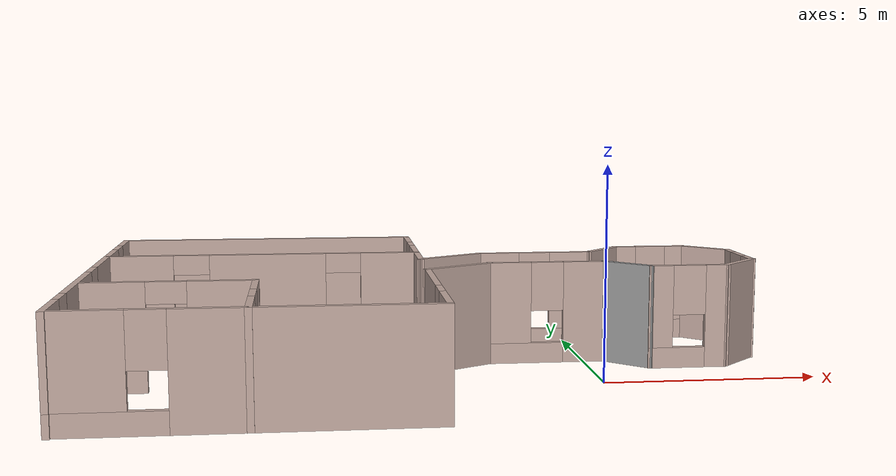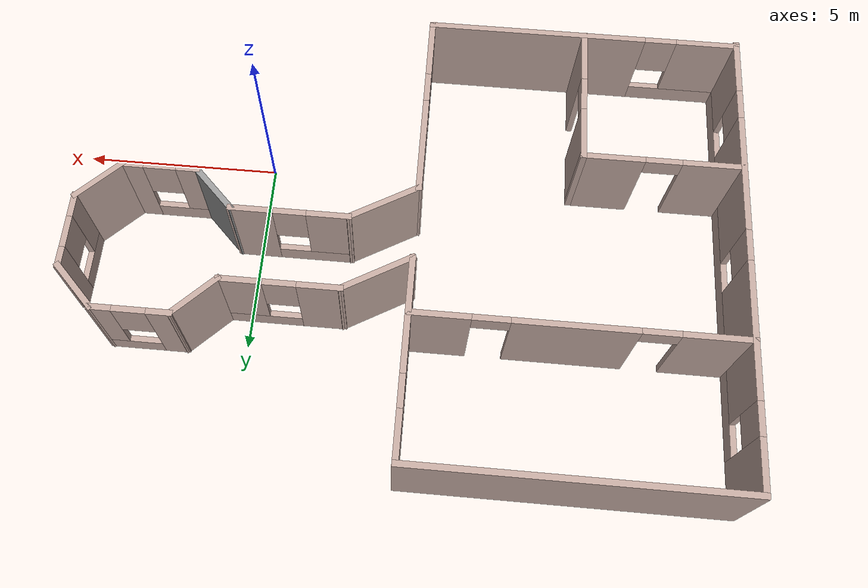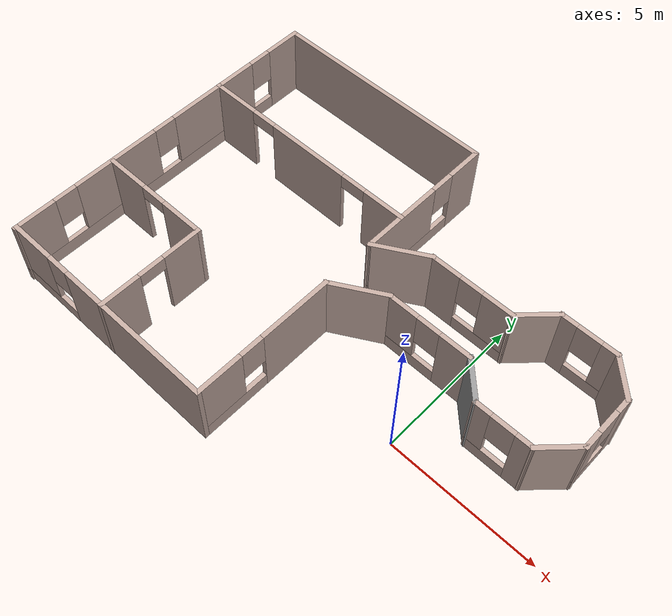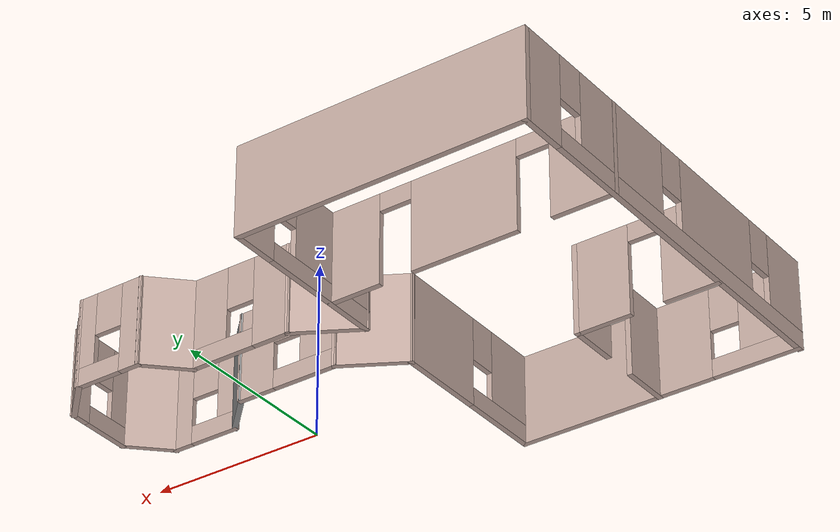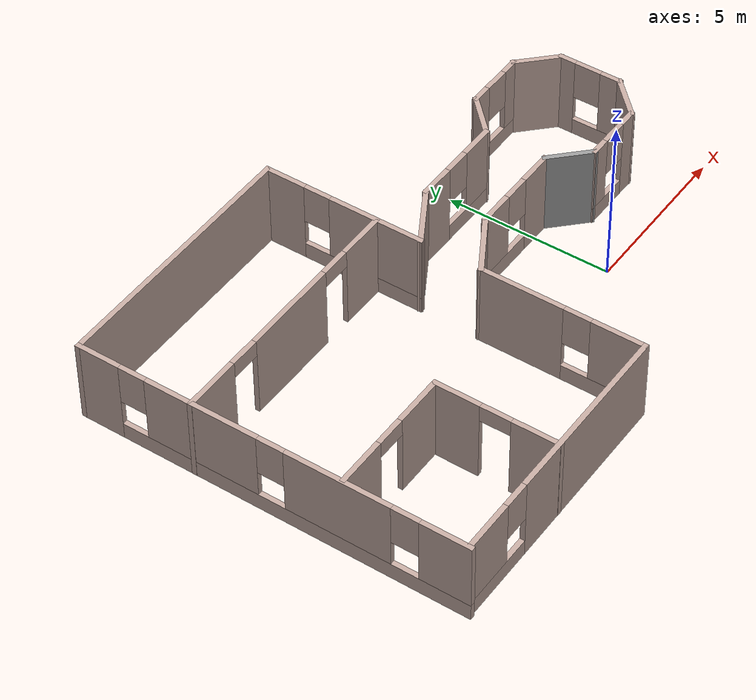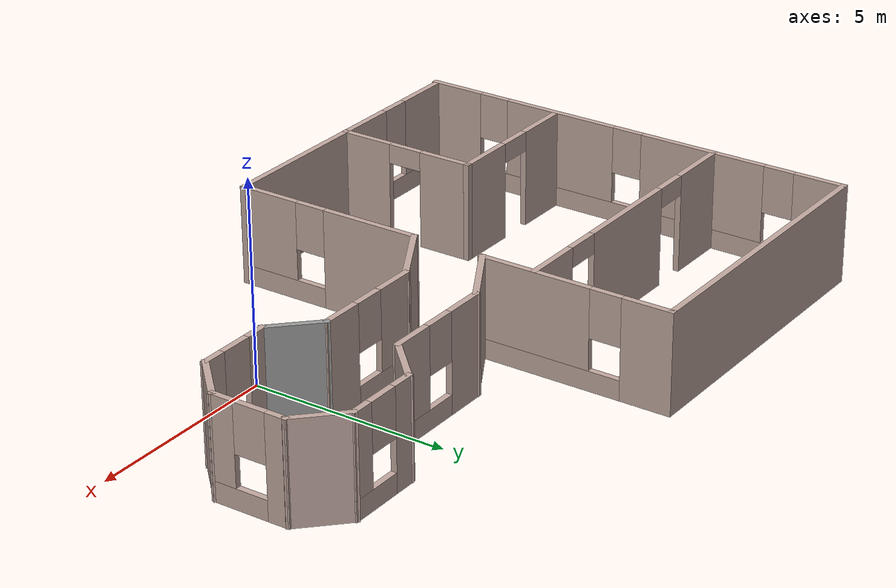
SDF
<?xml version='1.0'?>
<sdf version='1.6'>
  <model name='building'>
    <pose frame=''>-3.74313 2.35666 0 0 -0 0</pose>
    <link name='Wall_1'>
      <collision name='Wall_1_Collision'>
        <geometry>
          <box>
            <size>8 0.15 2.5</size>
          </box>
        </geometry>
        <pose frame=''>0 0 1.25 0 -0 0</pose>
      </collision>
      <visual name='Wall_1_Visual'>
        <pose frame=''>0 0 1.25 0 -0 0</pose>
        <geometry>
          <box>
            <size>8 0.15 2.5</size>
          </box>
        </geometry>
        <material>
          <script>
            <uri>file://media/materials/scripts/gazebo.material</uri>
            <name>Gazebo/Grey</name>
          </script>
          <ambient>0.760784 0.662745 0.627451 1</ambient>
        </material>
        <meta>
          <layer>0</layer>
        </meta>
      </visual>
      <pose frame=''>-4.1192 5.8 0 0 -0 0</pose>
    </link>
    <link name='Wall_10'>
      <pose frame=''>6.13754 -0.929594 0 0 -0 3.14159</pose>
      <visual name='Wall_10_Visual_0'>
        <pose frame=''>-0.698217 0 1.25 0 -0 0</pose>
        <geometry>
          <box>
            <size>0.603566 0.15 2.5</size>
          </box>
        </geometry>
        <material>
          <script>
            <uri>file://media/materials/scripts/gazebo.material</uri>
            <name>Gazebo/Grey</name>
          </script>
          <ambient>0.760784 0.662745 0.627451 1</ambient>
        </material>
        <meta>
          <layer>0</layer>
        </meta>
      </visual>
      <collision name='Wall_10_Collision_0'>
        <geometry>
          <box>
            <size>0.603566 0.15 2.5</size>
          </box>
        </geometry>
        <pose frame=''>-0.698217 0 1.25 0 -0 0</pose>
      </collision>
      <visual name='Wall_10_Visual_1'>
        <pose frame=''>0.301783 0 0.25 0 -0 0</pose>
        <geometry>
          <box>
            <size>1.39643 0.15 0.5</size>
          </box>
        </geometry>
        <material>
          <script>
            <uri>file://media/materials/scripts/gazebo.material</uri>
            <name>Gazebo/Grey</name>
          </script>
          <ambient>0.760784 0.662745 0.627451 1</ambient>
        </material>
        <meta>
          <layer>0</layer>
        </meta>
      </visual>
      <collision name='Wall_10_Collision_1'>
        <geometry>
          <box>
            <size>1.39643 0.15 0.5</size>
          </box>
        </geometry>
        <pose frame=''>0.301783 0 0.25 0 -0 0</pose>
      </collision>
      <visual name='Wall_10_Visual_2'>
        <pose frame=''>0.701783 0 1.5 0 -0 0</pose>
        <geometry>
          <box>
            <size>0.596434 0.15 2</size>
          </box>
        </geometry>
        <material>
          <script>
            <uri>file://media/materials/scripts/gazebo.material</uri>
            <name>Gazebo/Grey</name>
          </script>
          <ambient>0.760784 0.662745 0.627451 1</ambient>
        </material>
        <meta>
          <layer>0</layer>
        </meta>
      </visual>
      <collision name='Wall_10_Collision_2'>
        <geometry>
          <box>
            <size>0.596434 0.15 2</size>
          </box>
        </geometry>
        <pose frame=''>0.701783 0 1.5 0 -0 0</pose>
      </collision>
      <visual name='Wall_10_Visual_3'>
        <pose frame=''>0.003566 0 1.9 0 -0 0</pose>
        <geometry>
          <box>
            <size>0.8 0.15 1.2</size>
          </box>
        </geometry>
        <material>
          <script>
            <uri>file://media/materials/scripts/gazebo.material</uri>
            <name>Gazebo/Grey</name>
          </script>
          <ambient>0.760784 0.662745 0.627451 1</ambient>
        </material>
        <meta>
          <layer>0</layer>
        </meta>
      </visual>
      <collision name='Wall_10_Collision_3'>
        <geometry>
          <box>
            <size>0.8 0.15 1.2</size>
          </box>
        </geometry>
        <pose frame=''>0.003566 0 1.9 0 -0 0</pose>
      </collision>
    </link>
    <link name='Wall_11'>
      <collision name='Wall_11_Collision'>
        <geometry>
          <box>
            <size>1.5 0.15 2.5</size>
          </box>
        </geometry>
        <pose frame=''>0 0 1.25 0 -0 0</pose>
      </collision>
      <visual name='Wall_11_Visual'>
        <pose frame=''>0 0 1.25 0 -0 0</pose>
        <geometry>
          <box>
            <size>1.5 0.15 2.5</size>
          </box>
        </geometry>
        <material>
          <script>
            <uri>file://media/materials/scripts/gazebo.material</uri>
            <name>Gazebo/Grey</name>
          </script>
          <ambient>1 1 1 1</ambient>
        </material>
        <meta>
          <layer>0</layer>
        </meta>
      </visual>
      <pose frame=''>4.73524 -0.452297 0 0 -0 2.35619</pose>
    </link>
    <link name='Wall_12'>
      <pose frame=''>2.83295 0.025 0 0 -0 3.14159</pose>
      <visual name='Wall_12_Visual_0'>
        <pose frame=''>-0.948642 0 1.25 0 -0 0</pose>
        <geometry>
          <box>
            <size>1.10272 0.15 2.5</size>
          </box>
        </geometry>
        <material>
          <script>
            <uri>file://media/materials/scripts/gazebo.material</uri>
            <name>Gazebo/Grey</name>
          </script>
          <ambient>0.760784 0.662745 0.627451 1</ambient>
        </material>
        <meta>
          <layer>0</layer>
        </meta>
      </visual>
      <collision name='Wall_12_Collision_0'>
        <geometry>
          <box>
            <size>1.10272 0.15 2.5</size>
          </box>
        </geometry>
        <pose frame=''>-0.948642 0 1.25 0 -0 0</pose>
      </collision>
      <visual name='Wall_12_Visual_1'>
        <pose frame=''>0.551358 0 0.25 0 -0 0</pose>
        <geometry>
          <box>
            <size>1.89728 0.15 0.5</size>
          </box>
        </geometry>
        <material>
          <script>
            <uri>file://media/materials/scripts/gazebo.material</uri>
            <name>Gazebo/Grey</name>
          </script>
          <ambient>0.760784 0.662745 0.627451 1</ambient>
        </material>
        <meta>
          <layer>0</layer>
        </meta>
      </visual>
      <collision name='Wall_12_Collision_1'>
        <geometry>
          <box>
            <size>1.89728 0.15 0.5</size>
          </box>
        </geometry>
        <pose frame=''>0.551358 0 0.25 0 -0 0</pose>
      </collision>
      <visual name='Wall_12_Visual_2'>
        <pose frame=''>0.951358 0 1.5 0 -0 0</pose>
        <geometry>
          <box>
            <size>1.09728 0.15 2</size>
          </box>
        </geometry>
        <material>
          <script>
            <uri>file://media/materials/scripts/gazebo.material</uri>
            <name>Gazebo/Grey</name>
          </script>
          <ambient>0.760784 0.662745 0.627451 1</ambient>
        </material>
        <meta>
          <layer>0</layer>
        </meta>
      </visual>
      <collision name='Wall_12_Collision_2'>
        <geometry>
          <box>
            <size>1.09728 0.15 2</size>
          </box>
        </geometry>
        <pose frame=''>0.951358 0 1.5 0 -0 0</pose>
      </collision>
      <visual name='Wall_12_Visual_3'>
        <pose frame=''>0.002717 0 1.9 0 -0 0</pose>
        <geometry>
          <box>
            <size>0.8 0.15 1.2</size>
          </box>
        </geometry>
        <material>
          <script>
            <uri>file://media/materials/scripts/gazebo.material</uri>
            <name>Gazebo/Grey</name>
          </script>
          <ambient>0.760784 0.662745 0.627451 1</ambient>
        </material>
        <meta>
          <layer>0</layer>
        </meta>
      </visual>
      <collision name='Wall_12_Collision_3'>
        <geometry>
          <box>
            <size>0.8 0.15 1.2</size>
          </box>
        </geometry>
        <pose frame=''>0.002717 0 1.9 0 -0 0</pose>
      </collision>
    </link>
    <link name='Wall_13'>
      <collision name='Wall_13_Collision'>
        <geometry>
          <box>
            <size>2 0.15 2.5</size>
          </box>
        </geometry>
        <pose frame=''>0 0 1.25 0 -0 0</pose>
      </collision>
      <visual name='Wall_13_Visual'>
        <pose frame=''>0 0 1.25 0 -0 0</pose>
        <geometry>
          <box>
            <size>2 0.15 2.5</size>
          </box>
        </geometry>
        <material>
          <script>
            <uri>file://media/materials/scripts/gazebo.material</uri>
            <name>Gazebo/Grey</name>
          </script>
          <ambient>0.760784 0.662745 0.627451 1</ambient>
        </material>
        <meta>
          <layer>0</layer>
        </meta>
      </visual>
      <pose frame=''>0.606874 -0.4375 0 0 0 -2.61799</pose>
    </link>
    <link name='Wall_14'>
      <pose frame=''>-0.194199 -3.325 0 0 0 -1.5708</pose>
      <visual name='Wall_14_Visual_0'>
        <pose frame=''>-1.21303 0 1.25 0 -0 0</pose>
        <geometry>
          <box>
            <size>2.57394 0.15 2.5</size>
          </box>
        </geometry>
        <material>
          <script>
            <uri>file://media/materials/scripts/gazebo.material</uri>
            <name>Gazebo/Grey</name>
          </script>
          <ambient>0.760784 0.662745 0.627451 1</ambient>
        </material>
        <meta>
          <layer>0</layer>
        </meta>
      </visual>
      <collision name='Wall_14_Collision_0'>
        <geometry>
          <box>
            <size>2.57394 0.15 2.5</size>
          </box>
        </geometry>
        <pose frame=''>-1.21303 0 1.25 0 -0 0</pose>
      </collision>
      <visual name='Wall_14_Visual_1'>
        <pose frame=''>1.28697 0 0.25 0 -0 0</pose>
        <geometry>
          <box>
            <size>2.42606 0.15 0.5</size>
          </box>
        </geometry>
        <material>
          <script>
            <uri>file://media/materials/scripts/gazebo.material</uri>
            <name>Gazebo/Grey</name>
          </script>
          <ambient>0.760784 0.662745 0.627451 1</ambient>
        </material>
        <meta>
          <layer>0</layer>
        </meta>
      </visual>
      <collision name='Wall_14_Collision_1'>
        <geometry>
          <box>
            <size>2.42606 0.15 0.5</size>
          </box>
        </geometry>
        <pose frame=''>1.28697 0 0.25 0 -0 0</pose>
      </collision>
      <visual name='Wall_14_Visual_2'>
        <pose frame=''>1.68697 0 1.5 0 -0 0</pose>
        <geometry>
          <box>
            <size>1.62606 0.15 2</size>
          </box>
        </geometry>
        <material>
          <script>
            <uri>file://media/materials/scripts/gazebo.material</uri>
            <name>Gazebo/Grey</name>
          </script>
          <ambient>0.760784 0.662745 0.627451 1</ambient>
        </material>
        <meta>
          <layer>0</layer>
        </meta>
      </visual>
      <collision name='Wall_14_Collision_2'>
        <geometry>
          <box>
            <size>1.62606 0.15 2</size>
          </box>
        </geometry>
        <pose frame=''>1.68697 0 1.5 0 -0 0</pose>
      </collision>
      <visual name='Wall_14_Visual_3'>
        <pose frame=''>0.473941 0 1.9 0 -0 0</pose>
        <geometry>
          <box>
            <size>0.8 0.15 1.2</size>
          </box>
        </geometry>
        <material>
          <script>
            <uri>file://media/materials/scripts/gazebo.material</uri>
            <name>Gazebo/Grey</name>
          </script>
          <ambient>0.760784 0.662745 0.627451 1</ambient>
        </material>
        <meta>
          <layer>0</layer>
        </meta>
      </visual>
      <collision name='Wall_14_Collision_3'>
        <geometry>
          <box>
            <size>0.8 0.15 1.2</size>
          </box>
        </geometry>
        <pose frame=''>0.473941 0 1.9 0 -0 0</pose>
      </collision>
    </link>
    <link name='Wall_15'>
      <pose frame=''>-4.1192 -5.75 0 0 -0 3.14159</pose>
      <visual name='Wall_15_Visual_0'>
        <pose frame=''>-1.20854 0 1.25 0 -0 0</pose>
        <geometry>
          <box>
            <size>5.58292 0.15 2.5</size>
          </box>
        </geometry>
        <material>
          <script>
            <uri>file://media/materials/scripts/gazebo.material</uri>
            <name>Gazebo/Grey</name>
          </script>
          <ambient>0.760784 0.662745 0.627451 1</ambient>
        </material>
        <meta>
          <layer>0</layer>
        </meta>
      </visual>
      <collision name='Wall_15_Collision_0'>
        <geometry>
          <box>
            <size>5.58292 0.15 2.5</size>
          </box>
        </geometry>
        <pose frame=''>-1.20854 0 1.25 0 -0 0</pose>
      </collision>
      <visual name='Wall_15_Visual_1'>
        <pose frame=''>2.79146 0 0.25 0 -0 0</pose>
        <geometry>
          <box>
            <size>2.41708 0.15 0.5</size>
          </box>
        </geometry>
        <material>
          <script>
            <uri>file://media/materials/scripts/gazebo.material</uri>
            <name>Gazebo/Grey</name>
          </script>
          <ambient>0.760784 0.662745 0.627451 1</ambient>
        </material>
        <meta>
          <layer>0</layer>
        </meta>
      </visual>
      <collision name='Wall_15_Collision_1'>
        <geometry>
          <box>
            <size>2.41708 0.15 0.5</size>
          </box>
        </geometry>
        <pose frame=''>2.79146 0 0.25 0 -0 0</pose>
      </collision>
      <visual name='Wall_15_Visual_2'>
        <pose frame=''>3.19146 0 1.5 0 -0 0</pose>
        <geometry>
          <box>
            <size>1.61708 0.15 2</size>
          </box>
        </geometry>
        <material>
          <script>
            <uri>file://media/materials/scripts/gazebo.material</uri>
            <name>Gazebo/Grey</name>
          </script>
          <ambient>0.760784 0.662745 0.627451 1</ambient>
        </material>
        <meta>
          <layer>0</layer>
        </meta>
      </visual>
      <collision name='Wall_15_Collision_2'>
        <geometry>
          <box>
            <size>1.61708 0.15 2</size>
          </box>
        </geometry>
        <pose frame=''>3.19146 0 1.5 0 -0 0</pose>
      </collision>
      <visual name='Wall_15_Visual_3'>
        <pose frame=''>1.98292 0 1.9 0 -0 0</pose>
        <geometry>
          <box>
            <size>0.8 0.15 1.2</size>
          </box>
        </geometry>
        <material>
          <script>
            <uri>file://media/materials/scripts/gazebo.material</uri>
            <name>Gazebo/Grey</name>
          </script>
          <ambient>0.760784 0.662745 0.627451 1</ambient>
        </material>
        <meta>
          <layer>0</layer>
        </meta>
      </visual>
      <collision name='Wall_15_Collision_3'>
        <geometry>
          <box>
            <size>0.8 0.15 1.2</size>
          </box>
        </geometry>
        <pose frame=''>1.98292 0 1.9 0 -0 0</pose>
      </collision>
    </link>
    <link name='Wall_17'>
      <pose frame=''>-8.0442 0 0 0 0 -1.5708</pose>
      <visual name='Wall_17_Visual_0'>
        <pose frame=''>-5.19946 0 1.25 0 -0 0</pose>
        <geometry>
          <box>
            <size>1.35107 0.15 2.5</size>
          </box>
        </geometry>
        <material>
          <script>
            <uri>file://media/materials/scripts/gazebo.material</uri>
            <name>Gazebo/Grey</name>
          </script>
          <ambient>0.760784 0.662745 0.627451 1</ambient>
        </material>
        <meta>
          <layer>0</layer>
        </meta>
      </visual>
      <collision name='Wall_17_Collision_0'>
        <geometry>
          <box>
            <size>1.35107 0.15 2.5</size>
          </box>
        </geometry>
        <pose frame=''>-5.19946 0 1.25 0 -0 0</pose>
      </collision>
      <visual name='Wall_17_Visual_1'>
        <pose frame=''>0.675536 0 0.25 0 -0 0</pose>
        <geometry>
          <box>
            <size>10.3989 0.15 0.5</size>
          </box>
        </geometry>
        <material>
          <script>
            <uri>file://media/materials/scripts/gazebo.material</uri>
            <name>Gazebo/Grey</name>
          </script>
          <ambient>0.760784 0.662745 0.627451 1</ambient>
        </material>
        <meta>
          <layer>0</layer>
        </meta>
      </visual>
      <collision name='Wall_17_Collision_1'>
        <geometry>
          <box>
            <size>10.3989 0.15 0.5</size>
          </box>
        </geometry>
        <pose frame=''>0.675536 0 0.25 0 -0 0</pose>
      </collision>
      <visual name='Wall_17_Visual_2'>
        <pose frame=''>-2.0285 0 1.5 0 -0 0</pose>
        <geometry>
          <box>
            <size>3.39086 0.15 2</size>
          </box>
        </geometry>
        <material>
          <script>
            <uri>file://media/materials/scripts/gazebo.material</uri>
            <name>Gazebo/Grey</name>
          </script>
          <ambient>0.760784 0.662745 0.627451 1</ambient>
        </material>
        <meta>
          <layer>0</layer>
        </meta>
      </visual>
      <collision name='Wall_17_Collision_2'>
        <geometry>
          <box>
            <size>3.39086 0.15 2</size>
          </box>
        </geometry>
        <pose frame=''>-2.0285 0 1.5 0 -0 0</pose>
      </collision>
      <visual name='Wall_17_Visual_3'>
        <pose frame=''>2.02471 0 1.5 0 -0 0</pose>
        <geometry>
          <box>
            <size>3.11555 0.15 2</size>
          </box>
        </geometry>
        <material>
          <script>
            <uri>file://media/materials/scripts/gazebo.material</uri>
            <name>Gazebo/Grey</name>
          </script>
          <ambient>0.760784 0.662745 0.627451 1</ambient>
        </material>
        <meta>
          <layer>0</layer>
        </meta>
      </visual>
      <collision name='Wall_17_Collision_3'>
        <geometry>
          <box>
            <size>3.11555 0.15 2</size>
          </box>
        </geometry>
        <pose frame=''>2.02471 0 1.5 0 -0 0</pose>
      </collision>
      <visual name='Wall_17_Visual_4'>
        <pose frame=''>5.12874 0 1.5 0 -0 0</pose>
        <geometry>
          <box>
            <size>1.49252 0.15 2</size>
          </box>
        </geometry>
        <material>
          <script>
            <uri>file://media/materials/scripts/gazebo.material</uri>
            <name>Gazebo/Grey</name>
          </script>
          <ambient>0.760784 0.662745 0.627451 1</ambient>
        </material>
        <meta>
          <layer>0</layer>
        </meta>
      </visual>
      <collision name='Wall_17_Collision_4'>
        <geometry>
          <box>
            <size>1.49252 0.15 2</size>
          </box>
        </geometry>
        <pose frame=''>5.12874 0 1.5 0 -0 0</pose>
      </collision>
      <visual name='Wall_17_Visual_5'>
        <pose frame=''>-4.12393 0 1.9 0 -0 0</pose>
        <geometry>
          <box>
            <size>0.8 0.15 1.2</size>
          </box>
        </geometry>
        <material>
          <script>
            <uri>file://media/materials/scripts/gazebo.material</uri>
            <name>Gazebo/Grey</name>
          </script>
          <ambient>0.760784 0.662745 0.627451 1</ambient>
        </material>
        <meta>
          <layer>0</layer>
        </meta>
      </visual>
      <collision name='Wall_17_Collision_5'>
        <geometry>
          <box>
            <size>0.8 0.15 1.2</size>
          </box>
        </geometry>
        <pose frame=''>-4.12393 0 1.9 0 -0 0</pose>
      </collision>
      <visual name='Wall_17_Visual_6'>
        <pose frame=''>0.066933 0 1.9 0 -0 0</pose>
        <geometry>
          <box>
            <size>0.8 0.15 1.2</size>
          </box>
        </geometry>
        <material>
          <script>
            <uri>file://media/materials/scripts/gazebo.material</uri>
            <name>Gazebo/Grey</name>
          </script>
          <ambient>0.760784 0.662745 0.627451 1</ambient>
        </material>
        <meta>
          <layer>0</layer>
        </meta>
      </visual>
      <collision name='Wall_17_Collision_6'>
        <geometry>
          <box>
            <size>0.8 0.15 1.2</size>
          </box>
        </geometry>
        <pose frame=''>0.066933 0 1.9 0 -0 0</pose>
      </collision>
      <visual name='Wall_17_Visual_7'>
        <pose frame=''>3.98248 0 1.9 0 -0 0</pose>
        <geometry>
          <box>
            <size>0.8 0.15 1.2</size>
          </box>
        </geometry>
        <material>
          <script>
            <uri>file://media/materials/scripts/gazebo.material</uri>
            <name>Gazebo/Grey</name>
          </script>
          <ambient>0.760784 0.662745 0.627451 1</ambient>
        </material>
        <meta>
          <layer>0</layer>
        </meta>
      </visual>
      <collision name='Wall_17_Collision_7'>
        <geometry>
          <box>
            <size>0.8 0.15 1.2</size>
          </box>
        </geometry>
        <pose frame=''>3.98248 0 1.9 0 -0 0</pose>
      </collision>
    </link>
    <link name='Wall_2'>
      <pose frame=''>-0.194199 3.375 0 0 0 -1.5708</pose>
      <visual name='Wall_2_Visual_0'>
        <pose frame=''>-1.85505 0 1.25 0 -0 0</pose>
        <geometry>
          <box>
            <size>1.28989 0.15 2.5</size>
          </box>
        </geometry>
        <material>
          <script>
            <uri>file://media/materials/scripts/gazebo.material</uri>
            <name>Gazebo/Grey</name>
          </script>
          <ambient>0.760784 0.662745 0.627451 1</ambient>
        </material>
        <meta>
          <layer>0</layer>
        </meta>
      </visual>
      <collision name='Wall_2_Collision_0'>
        <geometry>
          <box>
            <size>1.28989 0.15 2.5</size>
          </box>
        </geometry>
        <pose frame=''>-1.85505 0 1.25 0 -0 0</pose>
      </collision>
      <visual name='Wall_2_Visual_1'>
        <pose frame=''>0.644945 0 0.25 0 -0 0</pose>
        <geometry>
          <box>
            <size>3.71011 0.15 0.5</size>
          </box>
        </geometry>
        <material>
          <script>
            <uri>file://media/materials/scripts/gazebo.material</uri>
            <name>Gazebo/Grey</name>
          </script>
          <ambient>0.760784 0.662745 0.627451 1</ambient>
        </material>
        <meta>
          <layer>0</layer>
        </meta>
      </visual>
      <collision name='Wall_2_Collision_1'>
        <geometry>
          <box>
            <size>3.71011 0.15 0.5</size>
          </box>
        </geometry>
        <pose frame=''>0.644945 0 0.25 0 -0 0</pose>
      </collision>
      <visual name='Wall_2_Visual_2'>
        <pose frame=''>1.04495 0 1.5 0 -0 0</pose>
        <geometry>
          <box>
            <size>2.91011 0.15 2</size>
          </box>
        </geometry>
        <material>
          <script>
            <uri>file://media/materials/scripts/gazebo.material</uri>
            <name>Gazebo/Grey</name>
          </script>
          <ambient>0.760784 0.662745 0.627451 1</ambient>
        </material>
        <meta>
          <layer>0</layer>
        </meta>
      </visual>
      <collision name='Wall_2_Collision_2'>
        <geometry>
          <box>
            <size>2.91011 0.15 2</size>
          </box>
        </geometry>
        <pose frame=''>1.04495 0 1.5 0 -0 0</pose>
      </collision>
      <visual name='Wall_2_Visual_3'>
        <pose frame=''>-0.810109 0 1.9 0 -0 0</pose>
        <geometry>
          <box>
            <size>0.8 0.15 1.2</size>
          </box>
        </geometry>
        <material>
          <script>
            <uri>file://media/materials/scripts/gazebo.material</uri>
            <name>Gazebo/Grey</name>
          </script>
          <ambient>0.760784 0.662745 0.627451 1</ambient>
        </material>
        <meta>
          <layer>0</layer>
        </meta>
      </visual>
      <collision name='Wall_2_Collision_3'>
        <geometry>
          <box>
            <size>0.8 0.15 1.2</size>
          </box>
        </geometry>
        <pose frame=''>-0.810109 0 1.9 0 -0 0</pose>
      </collision>
    </link>
    <link name='Wall_20'>
      <pose frame=''>-4.14434 -3.95671 0 0 -0 1.5708</pose>
      <visual name='Wall_20_Visual_0'>
        <pose frame=''>-1.16009 0 1.25 0 -0 0</pose>
        <geometry>
          <box>
            <size>1.42982 0.15 2.5</size>
          </box>
        </geometry>
        <material>
          <script>
            <uri>file://media/materials/scripts/gazebo.material</uri>
            <name>Gazebo/Grey</name>
          </script>
          <ambient>0.760784 0.662745 0.627451 1</ambient>
        </material>
        <meta>
          <layer>0</layer>
        </meta>
      </visual>
      <collision name='Wall_20_Collision_0'>
        <geometry>
          <box>
            <size>1.42982 0.15 2.5</size>
          </box>
        </geometry>
        <pose frame=''>-1.16009 0 1.25 0 -0 0</pose>
      </collision>
      <visual name='Wall_20_Visual_1'>
        <pose frame=''>1.16491 0 1.25 0 -0 0</pose>
        <geometry>
          <box>
            <size>1.42018 0.15 2.5</size>
          </box>
        </geometry>
        <material>
          <script>
            <uri>file://media/materials/scripts/gazebo.material</uri>
            <name>Gazebo/Grey</name>
          </script>
          <ambient>0.760784 0.662745 0.627451 1</ambient>
        </material>
        <meta>
          <layer>0</layer>
        </meta>
      </visual>
      <collision name='Wall_20_Collision_1'>
        <geometry>
          <box>
            <size>1.42018 0.15 2.5</size>
          </box>
        </geometry>
        <pose frame=''>1.16491 0 1.25 0 -0 0</pose>
      </collision>
      <visual name='Wall_20_Visual_2'>
        <pose frame=''>0.004823 0 2.25 0 -0 0</pose>
        <geometry>
          <box>
            <size>0.9 0.15 0.5</size>
          </box>
        </geometry>
        <material>
          <script>
            <uri>file://media/materials/scripts/gazebo.material</uri>
            <name>Gazebo/Grey</name>
          </script>
          <ambient>0.760784 0.662745 0.627451 1</ambient>
        </material>
        <meta>
          <layer>0</layer>
        </meta>
      </visual>
      <collision name='Wall_20_Collision_2'>
        <geometry>
          <box>
            <size>0.9 0.15 0.5</size>
          </box>
        </geometry>
        <pose frame=''>0.004823 0 2.25 0 -0 0</pose>
      </collision>
    </link>
    <link name='Wall_21'>
      <pose frame=''>-6.06934 -2.15672 0 0 -0 3.14159</pose>
      <visual name='Wall_21_Visual_0'>
        <pose frame=''>-1.20861 0 1.25 0 -0 0</pose>
        <geometry>
          <box>
            <size>1.58278 0.15 2.5</size>
          </box>
        </geometry>
        <material>
          <script>
            <uri>file://media/materials/scripts/gazebo.material</uri>
            <name>Gazebo/Grey</name>
          </script>
          <ambient>0.760784 0.662745 0.627451 1</ambient>
        </material>
        <meta>
          <layer>0</layer>
        </meta>
      </visual>
      <collision name='Wall_21_Collision_0'>
        <geometry>
          <box>
            <size>1.58278 0.15 2.5</size>
          </box>
        </geometry>
        <pose frame=''>-1.20861 0 1.25 0 -0 0</pose>
      </collision>
      <visual name='Wall_21_Visual_1'>
        <pose frame=''>1.24139 0 1.25 0 -0 0</pose>
        <geometry>
          <box>
            <size>1.51723 0.15 2.5</size>
          </box>
        </geometry>
        <material>
          <script>
            <uri>file://media/materials/scripts/gazebo.material</uri>
            <name>Gazebo/Grey</name>
          </script>
          <ambient>0.760784 0.662745 0.627451 1</ambient>
        </material>
        <meta>
          <layer>0</layer>
        </meta>
      </visual>
      <collision name='Wall_21_Collision_1'>
        <geometry>
          <box>
            <size>1.51723 0.15 2.5</size>
          </box>
        </geometry>
        <pose frame=''>1.24139 0 1.25 0 -0 0</pose>
      </collision>
      <visual name='Wall_21_Visual_2'>
        <pose frame=''>0.032775 0 2.25 0 -0 0</pose>
        <geometry>
          <box>
            <size>0.9 0.15 0.5</size>
          </box>
        </geometry>
        <material>
          <script>
            <uri>file://media/materials/scripts/gazebo.material</uri>
            <name>Gazebo/Grey</name>
          </script>
          <ambient>0.760784 0.662745 0.627451 1</ambient>
        </material>
        <meta>
          <layer>0</layer>
        </meta>
      </visual>
      <collision name='Wall_21_Collision_2'>
        <geometry>
          <box>
            <size>0.9 0.15 0.5</size>
          </box>
        </geometry>
        <pose frame=''>0.032775 0 2.25 0 -0 0</pose>
      </collision>
    </link>
    <link name='Wall_23'>
      <pose frame=''>-4.1232 2.3191 0 0 -0 3.14159</pose>
      <visual name='Wall_23_Visual_0'>
        <pose frame=''>-3.2392 0 1.25 0 -0 0</pose>
        <geometry>
          <box>
            <size>1.52159 0.15 2.5</size>
          </box>
        </geometry>
        <material>
          <script>
            <uri>file://media/materials/scripts/gazebo.material</uri>
            <name>Gazebo/Grey</name>
          </script>
          <ambient>0.760784 0.662745 0.627451 1</ambient>
        </material>
        <meta>
          <layer>0</layer>
        </meta>
      </visual>
      <collision name='Wall_23_Collision_0'>
        <geometry>
          <box>
            <size>1.52159 0.15 2.5</size>
          </box>
        </geometry>
        <pose frame=''>-3.2392 0 1.25 0 -0 0</pose>
      </collision>
      <visual name='Wall_23_Visual_1'>
        <pose frame=''>-0.101222 0 1.25 0 -0 0</pose>
        <geometry>
          <box>
            <size>2.95437 0.15 2.5</size>
          </box>
        </geometry>
        <material>
          <script>
            <uri>file://media/materials/scripts/gazebo.material</uri>
            <name>Gazebo/Grey</name>
          </script>
          <ambient>0.760784 0.662745 0.627451 1</ambient>
        </material>
        <meta>
          <layer>0</layer>
        </meta>
      </visual>
      <collision name='Wall_23_Collision_1'>
        <geometry>
          <box>
            <size>2.95437 0.15 2.5</size>
          </box>
        </geometry>
        <pose frame=''>-0.101222 0 1.25 0 -0 0</pose>
      </collision>
      <visual name='Wall_23_Visual_2'>
        <pose frame=''>3.13798 0 1.25 0 -0 0</pose>
        <geometry>
          <box>
            <size>1.72404 0.15 2.5</size>
          </box>
        </geometry>
        <material>
          <script>
            <uri>file://media/materials/scripts/gazebo.material</uri>
            <name>Gazebo/Grey</name>
          </script>
          <ambient>0.760784 0.662745 0.627451 1</ambient>
        </material>
        <meta>
          <layer>0</layer>
        </meta>
      </visual>
      <collision name='Wall_23_Collision_2'>
        <geometry>
          <box>
            <size>1.72404 0.15 2.5</size>
          </box>
        </geometry>
        <pose frame=''>3.13798 0 1.25 0 -0 0</pose>
      </collision>
      <visual name='Wall_23_Visual_3'>
        <pose frame=''>-2.02841 0 2.25 0 -0 0</pose>
        <geometry>
          <box>
            <size>0.9 0.15 0.5</size>
          </box>
        </geometry>
        <material>
          <script>
            <uri>file://media/materials/scripts/gazebo.material</uri>
            <name>Gazebo/Grey</name>
          </script>
          <ambient>0.760784 0.662745 0.627451 1</ambient>
        </material>
        <meta>
          <layer>0</layer>
        </meta>
      </visual>
      <collision name='Wall_23_Collision_3'>
        <geometry>
          <box>
            <size>0.9 0.15 0.5</size>
          </box>
        </geometry>
        <pose frame=''>-2.02841 0 2.25 0 -0 0</pose>
      </collision>
      <visual name='Wall_23_Visual_4'>
        <pose frame=''>1.82596 0 2.25 0 -0 0</pose>
        <geometry>
          <box>
            <size>0.9 0.15 0.5</size>
          </box>
        </geometry>
        <material>
          <script>
            <uri>file://media/materials/scripts/gazebo.material</uri>
            <name>Gazebo/Grey</name>
          </script>
          <ambient>0.760784 0.662745 0.627451 1</ambient>
        </material>
        <meta>
          <layer>0</layer>
        </meta>
      </visual>
      <collision name='Wall_23_Collision_4'>
        <geometry>
          <box>
            <size>0.9 0.15 0.5</size>
          </box>
        </geometry>
        <pose frame=''>1.82596 0 2.25 0 -0 0</pose>
      </collision>
    </link>
    <link name='Wall_3'>
      <collision name='Wall_3_Collision'>
        <geometry>
          <box>
            <size>2 0.15 2.5</size>
          </box>
        </geometry>
        <pose frame=''>0 0 1.25 0 -0 0</pose>
      </collision>
      <visual name='Wall_3_Visual'>
        <pose frame=''>0 0 1.25 0 -0 0</pose>
        <geometry>
          <box>
            <size>2 0.15 2.5</size>
          </box>
        </geometry>
        <material>
          <script>
            <uri>file://media/materials/scripts/gazebo.material</uri>
            <name>Gazebo/Grey</name>
          </script>
          <ambient>0.760784 0.662745 0.627451 1</ambient>
        </material>
        <meta>
          <layer>0</layer>
        </meta>
      </visual>
      <pose frame=''>0.606874 1.4125 0 0 -0 0.523599</pose>
    </link>
    <link name='Wall_4'>
      <pose frame=''>2.83295 1.875 0 0 -0 0</pose>
      <visual name='Wall_4_Visual_0'>
        <pose frame=''>-0.951358 0 1.25 0 -0 0</pose>
        <geometry>
          <box>
            <size>1.09728 0.15 2.5</size>
          </box>
        </geometry>
        <material>
          <script>
            <uri>file://media/materials/scripts/gazebo.material</uri>
            <name>Gazebo/Grey</name>
          </script>
          <ambient>0.760784 0.662745 0.627451 1</ambient>
        </material>
        <meta>
          <layer>0</layer>
        </meta>
      </visual>
      <collision name='Wall_4_Collision_0'>
        <geometry>
          <box>
            <size>1.09728 0.15 2.5</size>
          </box>
        </geometry>
        <pose frame=''>-0.951358 0 1.25 0 -0 0</pose>
      </collision>
      <visual name='Wall_4_Visual_1'>
        <pose frame=''>0.548642 0 0.25 0 -0 0</pose>
        <geometry>
          <box>
            <size>1.90272 0.15 0.5</size>
          </box>
        </geometry>
        <material>
          <script>
            <uri>file://media/materials/scripts/gazebo.material</uri>
            <name>Gazebo/Grey</name>
          </script>
          <ambient>0.760784 0.662745 0.627451 1</ambient>
        </material>
        <meta>
          <layer>0</layer>
        </meta>
      </visual>
      <collision name='Wall_4_Collision_1'>
        <geometry>
          <box>
            <size>1.90272 0.15 0.5</size>
          </box>
        </geometry>
        <pose frame=''>0.548642 0 0.25 0 -0 0</pose>
      </collision>
      <visual name='Wall_4_Visual_2'>
        <pose frame=''>0.948642 0 1.5 0 -0 0</pose>
        <geometry>
          <box>
            <size>1.10272 0.15 2</size>
          </box>
        </geometry>
        <material>
          <script>
            <uri>file://media/materials/scripts/gazebo.material</uri>
            <name>Gazebo/Grey</name>
          </script>
          <ambient>0.760784 0.662745 0.627451 1</ambient>
        </material>
        <meta>
          <layer>0</layer>
        </meta>
      </visual>
      <collision name='Wall_4_Collision_2'>
        <geometry>
          <box>
            <size>1.10272 0.15 2</size>
          </box>
        </geometry>
        <pose frame=''>0.948642 0 1.5 0 -0 0</pose>
      </collision>
      <visual name='Wall_4_Visual_3'>
        <pose frame=''>-0.002717 0 1.9 0 -0 0</pose>
        <geometry>
          <box>
            <size>0.8 0.15 1.2</size>
          </box>
        </geometry>
        <material>
          <script>
            <uri>file://media/materials/scripts/gazebo.material</uri>
            <name>Gazebo/Grey</name>
          </script>
          <ambient>0.760784 0.662745 0.627451 1</ambient>
        </material>
        <meta>
          <layer>0</layer>
        </meta>
      </visual>
      <collision name='Wall_4_Collision_3'>
        <geometry>
          <box>
            <size>0.8 0.15 1.2</size>
          </box>
        </geometry>
        <pose frame=''>-0.002717 0 1.9 0 -0 0</pose>
      </collision>
    </link>
    <link name='Wall_5'>
      <collision name='Wall_5_Collision'>
        <geometry>
          <box>
            <size>1.5 0.15 2.5</size>
          </box>
        </geometry>
        <pose frame=''>0 0 1.25 0 -0 0</pose>
      </collision>
      <visual name='Wall_5_Visual'>
        <pose frame=''>0 0 1.25 0 -0 0</pose>
        <geometry>
          <box>
            <size>1.5 0.15 2.5</size>
          </box>
        </geometry>
        <material>
          <script>
            <uri>file://media/materials/scripts/gazebo.material</uri>
            <name>Gazebo/Grey</name>
          </script>
          <ambient>0.760784 0.662745 0.627451 1</ambient>
        </material>
        <meta>
          <layer>0</layer>
        </meta>
      </visual>
      <pose frame=''>4.73524 2.3523 0 0 -0 0.785398</pose>
    </link>
    <link name='Wall_6'>
      <pose frame=''>6.13754 2.82959 0 0 -0 0</pose>
      <visual name='Wall_6_Visual_0'>
        <pose frame=''>-0.686488 0 1.25 0 -0 0</pose>
        <geometry>
          <box>
            <size>0.627024 0.15 2.5</size>
          </box>
        </geometry>
        <material>
          <script>
            <uri>file://media/materials/scripts/gazebo.material</uri>
            <name>Gazebo/Grey</name>
          </script>
          <ambient>0.760784 0.662745 0.627451 1</ambient>
        </material>
        <meta>
          <layer>0</layer>
        </meta>
      </visual>
      <collision name='Wall_6_Collision_0'>
        <geometry>
          <box>
            <size>0.627024 0.15 2.5</size>
          </box>
        </geometry>
        <pose frame=''>-0.686488 0 1.25 0 -0 0</pose>
      </collision>
      <visual name='Wall_6_Visual_1'>
        <pose frame=''>0.313512 0 0.25 0 -0 0</pose>
        <geometry>
          <box>
            <size>1.37298 0.15 0.5</size>
          </box>
        </geometry>
        <material>
          <script>
            <uri>file://media/materials/scripts/gazebo.material</uri>
            <name>Gazebo/Grey</name>
          </script>
          <ambient>0.760784 0.662745 0.627451 1</ambient>
        </material>
        <meta>
          <layer>0</layer>
        </meta>
      </visual>
      <collision name='Wall_6_Collision_1'>
        <geometry>
          <box>
            <size>1.37298 0.15 0.5</size>
          </box>
        </geometry>
        <pose frame=''>0.313512 0 0.25 0 -0 0</pose>
      </collision>
      <visual name='Wall_6_Visual_2'>
        <pose frame=''>0.713512 0 1.5 0 -0 0</pose>
        <geometry>
          <box>
            <size>0.572976 0.15 2</size>
          </box>
        </geometry>
        <material>
          <script>
            <uri>file://media/materials/scripts/gazebo.material</uri>
            <name>Gazebo/Grey</name>
          </script>
          <ambient>0.760784 0.662745 0.627451 1</ambient>
        </material>
        <meta>
          <layer>0</layer>
        </meta>
      </visual>
      <collision name='Wall_6_Collision_2'>
        <geometry>
          <box>
            <size>0.572976 0.15 2</size>
          </box>
        </geometry>
        <pose frame=''>0.713512 0 1.5 0 -0 0</pose>
      </collision>
      <visual name='Wall_6_Visual_3'>
        <pose frame=''>0.027024 0 1.9 0 -0 0</pose>
        <geometry>
          <box>
            <size>0.8 0.15 1.2</size>
          </box>
        </geometry>
        <material>
          <script>
            <uri>file://media/materials/scripts/gazebo.material</uri>
            <name>Gazebo/Grey</name>
          </script>
          <ambient>0.760784 0.662745 0.627451 1</ambient>
        </material>
        <meta>
          <layer>0</layer>
        </meta>
      </visual>
      <collision name='Wall_6_Collision_3'>
        <geometry>
          <box>
            <size>0.8 0.15 1.2</size>
          </box>
        </geometry>
        <pose frame=''>0.027024 0 1.9 0 -0 0</pose>
      </collision>
    </link>
    <link name='Wall_7'>
      <collision name='Wall_7_Collision'>
        <geometry>
          <box>
            <size>1.5 0.15 2.5</size>
          </box>
        </geometry>
        <pose frame=''>0 0 1.25 0 -0 0</pose>
      </collision>
      <visual name='Wall_7_Visual'>
        <pose frame=''>0 0 1.25 0 -0 0</pose>
        <geometry>
          <box>
            <size>1.5 0.15 2.5</size>
          </box>
        </geometry>
        <material>
          <script>
            <uri>file://media/materials/scripts/gazebo.material</uri>
            <name>Gazebo/Grey</name>
          </script>
          <ambient>0.760784 0.662745 0.627451 1</ambient>
        </material>
        <meta>
          <layer>0</layer>
        </meta>
      </visual>
      <pose frame=''>7.53984 2.3523 0 0 0 -0.785398</pose>
    </link>
    <link name='Wall_8'>
      <pose frame=''>8.01714 0.95 0 0 0 -1.5708</pose>
      <visual name='Wall_8_Visual_0'>
        <pose frame=''>-0.726863 0 1.25 0 -0 0</pose>
        <geometry>
          <box>
            <size>0.546275 0.15 2.5</size>
          </box>
        </geometry>
        <material>
          <script>
            <uri>file://media/materials/scripts/gazebo.material</uri>
            <name>Gazebo/Grey</name>
          </script>
          <ambient>0.760784 0.662745 0.627451 1</ambient>
        </material>
        <meta>
          <layer>0</layer>
        </meta>
      </visual>
      <collision name='Wall_8_Collision_0'>
        <geometry>
          <box>
            <size>0.546275 0.15 2.5</size>
          </box>
        </geometry>
        <pose frame=''>-0.726863 0 1.25 0 -0 0</pose>
      </collision>
      <visual name='Wall_8_Visual_1'>
        <pose frame=''>0.273137 0 0.25 0 -0 0</pose>
        <geometry>
          <box>
            <size>1.45372 0.15 0.5</size>
          </box>
        </geometry>
        <material>
          <script>
            <uri>file://media/materials/scripts/gazebo.material</uri>
            <name>Gazebo/Grey</name>
          </script>
          <ambient>0.760784 0.662745 0.627451 1</ambient>
        </material>
        <meta>
          <layer>0</layer>
        </meta>
      </visual>
      <collision name='Wall_8_Collision_1'>
        <geometry>
          <box>
            <size>1.45372 0.15 0.5</size>
          </box>
        </geometry>
        <pose frame=''>0.273137 0 0.25 0 -0 0</pose>
      </collision>
      <visual name='Wall_8_Visual_2'>
        <pose frame=''>0.673137 0 1.5 0 -0 0</pose>
        <geometry>
          <box>
            <size>0.653725 0.15 2</size>
          </box>
        </geometry>
        <material>
          <script>
            <uri>file://media/materials/scripts/gazebo.material</uri>
            <name>Gazebo/Grey</name>
          </script>
          <ambient>0.760784 0.662745 0.627451 1</ambient>
        </material>
        <meta>
          <layer>0</layer>
        </meta>
      </visual>
      <collision name='Wall_8_Collision_2'>
        <geometry>
          <box>
            <size>0.653725 0.15 2</size>
          </box>
        </geometry>
        <pose frame=''>0.673137 0 1.5 0 -0 0</pose>
      </collision>
      <visual name='Wall_8_Visual_3'>
        <pose frame=''>-0.053725 0 1.9 0 -0 0</pose>
        <geometry>
          <box>
            <size>0.8 0.15 1.2</size>
          </box>
        </geometry>
        <material>
          <script>
            <uri>file://media/materials/scripts/gazebo.material</uri>
            <name>Gazebo/Grey</name>
          </script>
          <ambient>0.760784 0.662745 0.627451 1</ambient>
        </material>
        <meta>
          <layer>0</layer>
        </meta>
      </visual>
      <collision name='Wall_8_Collision_3'>
        <geometry>
          <box>
            <size>0.8 0.15 1.2</size>
          </box>
        </geometry>
        <pose frame=''>-0.053725 0 1.9 0 -0 0</pose>
      </collision>
    </link>
    <link name='Wall_9'>
      <collision name='Wall_9_Collision'>
        <geometry>
          <box>
            <size>1.5 0.15 2.5</size>
          </box>
        </geometry>
        <pose frame=''>0 0 1.25 0 -0 0</pose>
      </collision>
      <visual name='Wall_9_Visual'>
        <pose frame=''>0 0 1.25 0 -0 0</pose>
        <geometry>
          <box>
            <size>1.5 0.15 2.5</size>
          </box>
        </geometry>
        <material>
          <script>
            <uri>file://media/materials/scripts/gazebo.material</uri>
            <name>Gazebo/Grey</name>
          </script>
          <ambient>0.760784 0.662745 0.627451 1</ambient>
        </material>
        <meta>
          <layer>0</layer>
        </meta>
      </visual>
      <pose frame=''>7.53984 -0.452297 0 0 0 -2.35619</pose>
    </link>
    <static>1</static>
  </model>
</sdf>
